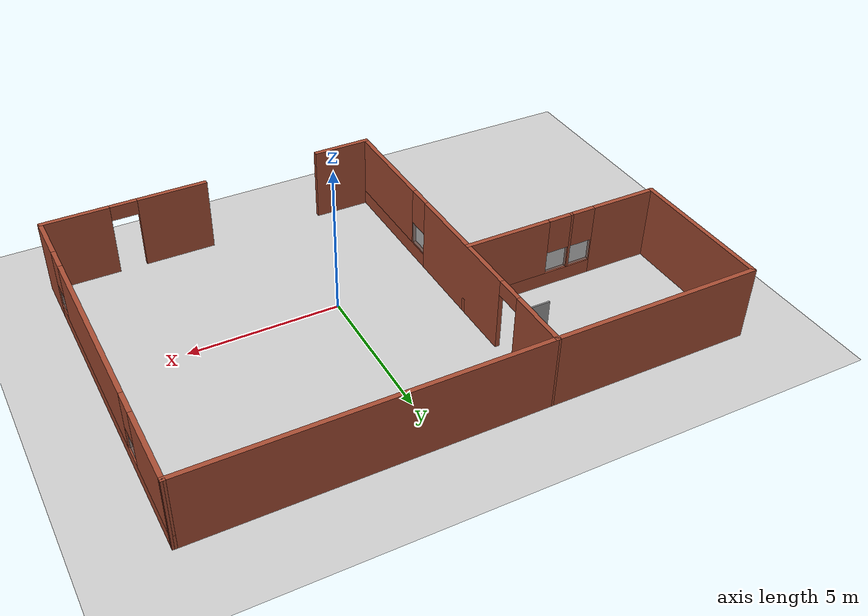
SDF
<sdf version="1.7">
 <world name="default">
  <model name="ground_plane">
   <static>1</static>
   <link name="link">
    <collision name="collision">
     <geometry><plane><normal>0 0 1</normal><size>100 100</size></plane></geometry>
     <surface><friction><ode><mu>100</mu><mu2>50</mu2></ode></friction></surface>
    </collision>
    <visual name="visual">
     <cast_shadows>0</cast_shadows>
     <geometry><plane><normal>0 0 1</normal><size>100 100</size></plane></geometry>
     <material>
      <script><uri>file://media/materials/scripts/gazebo.material</uri><name>Gazebo/Grey</name></script>
     </material>
    </visual>
   </link>
  </model>
  <light name="sun" type="directional">
   <pose>0 0 10 0 -0 0</pose>
   <diffuse>0.8 0.8 0.8 1</diffuse>
   <specular>0.2 0.2 0.2 1</specular>
   <attenuation>
    <range>1000</range>
    <constant>0.9</constant>
    <linear>0.01</linear>
    <quadratic>0.001</quadratic>
   </attenuation>
   <direction>-0.5 0.1 -0.9</direction>
   <spot><inner_angle>0</inner_angle><outer_angle>0</outer_angle><falloff>0</falloff></spot>
  </light>
  <scene><shadows>0</shadows><ambient>0.4 0.4 0.4 1</ambient><background>0.7 0.7 0.7 1</background></scene>
  <physics type="ode">
   <real_time_update_rate>1000</real_time_update_rate>
   <max_step_size>0.001</max_step_size>
   <real_time_factor>1</real_time_factor>
   <ode>
    <solver>
     <type>quick</type>
     <iters>150</iters>
     <precon_iters>0</precon_iters>
     <sor>1.4</sor>
     <use_dynamic_moi_rescaling>1</use_dynamic_moi_rescaling>
    </solver>
    <constraints>
     <cfm>1e-05</cfm>
     <erp>0.2</erp>
     <contact_max_correcting_vel>2000</contact_max_correcting_vel>
     <contact_surface_layer>0.01</contact_surface_layer>
    </constraints>
   </ode>
  </physics>
  <gravity>0 0 -9.8</gravity>
  <magnetic_field>6e-06 2.3e-05 -4.2e-05</magnetic_field>
  <atmosphere type="adiabatic"/>
  <audio><device>default</device></audio>
  <spherical_coordinates>
   <surface_model>EARTH_WGS84</surface_model>
   <latitude_deg>0</latitude_deg>
   <longitude_deg>0</longitude_deg>
   <elevation>0</elevation>
   <heading_deg>0</heading_deg>
  </spherical_coordinates>
  <model name="Garaje">
   <link name="Wall_32">
    <pose>9.04804 0.01998 0 0 -0 1.5708</pose>
    <visual name="Wall_32_Visual_0">
     <pose>-5.17883 0 1.25 0 -0 0</pose>
     <geometry><box><size>1.64234 0.15 2.5</size></box></geometry>
     <material>
      <script><uri>file://media/materials/scripts/gazebo.material</uri><name>Gazebo/Bricks</name></script>
      <ambient>1 1 1 1</ambient>
      <shader type="pixel"/>
     </material>
     <meta><layer>0</layer></meta>
    </visual>
    <visual name="Wall_32_Visual_1">
     <pose>0.821169 0 0.25 0 -0 0</pose>
     <geometry><box><size>10.3577 0.15 0.5</size></box></geometry>
     <material>
      <script><uri>file://media/materials/scripts/gazebo.material</uri><name>Gazebo/Bricks</name></script>
      <ambient>1 1 1 1</ambient>
      <shader type="pixel"/>
     </material>
     <meta><layer>0</layer></meta>
    </visual>
    <visual name="Wall_32_Visual_2">
     <pose>-0.498127 0 1.5 0 -0 0</pose>
     <geometry><box><size>6.11907 0.15 2</size></box></geometry>
     <material>
      <script><uri>file://media/materials/scripts/gazebo.material</uri><name>Gazebo/Bricks</name></script>
      <ambient>1 1 1 1</ambient>
      <shader type="pixel"/>
     </material>
     <meta><layer>0</layer></meta>
    </visual>
    <visual name="Wall_32_Visual_3">
     <pose>4.6807 0 1.5 0 -0 0</pose>
     <geometry><box><size>2.63859 0.15 2</size></box></geometry>
     <material>
      <script><uri>file://media/materials/scripts/gazebo.material</uri><name>Gazebo/Bricks</name></script>
      <ambient>1 1 1 1</ambient>
      <shader type="pixel"/>
     </material>
     <meta><layer>0</layer></meta>
    </visual>
    <visual name="Wall_32_Visual_4">
     <pose>-3.95766 0 1.9 0 -0 0</pose>
     <geometry><box><size>0.8 0.15 1.2</size></box></geometry>
     <material>
      <script><uri>file://media/materials/scripts/gazebo.material</uri><name>Gazebo/Bricks</name></script>
      <ambient>1 1 1 1</ambient>
      <shader type="pixel"/>
     </material>
     <meta><layer>0</layer></meta>
    </visual>
    <visual name="Wall_32_Visual_5">
     <pose>2.96141 0 1.9 0 -0 0</pose>
     <geometry><box><size>0.8 0.15 1.2</size></box></geometry>
     <material>
      <script><uri>file://media/materials/scripts/gazebo.material</uri><name>Gazebo/Bricks</name></script>
      <ambient>1 1 1 1</ambient>
      <shader type="pixel"/>
     </material>
     <meta><layer>0</layer></meta>
    </visual>
    <collision name="Wall_32_Collision_0">
     <pose>-5.17883 0 1.25 0 -0 0</pose>
     <geometry><box><size>1.64234 0.15 2.5</size></box></geometry>
     <surface>
      <friction>
       <ode><mu>1</mu><mu2>1</mu2><fdir1>0 0 0</fdir1><slip1>0</slip1><slip2>0</slip2></ode>
       <torsional>
        <coefficient>1</coefficient>
        <patch_radius>0</patch_radius>
        <surface_radius>0</surface_radius>
        <use_patch_radius>1</use_patch_radius>
        <ode><slip>0</slip></ode>
       </torsional>
      </friction>
      <bounce><restitution_coefficient>0</restitution_coefficient><threshold>1e+06</threshold></bounce>
      <contact>
       <collide_without_contact>0</collide_without_contact>
       <collide_without_contact_bitmask>1</collide_without_contact_bitmask>
       <collide_bitmask>1</collide_bitmask>
       <ode>
        <soft_cfm>0</soft_cfm>
        <soft_erp>0.2</soft_erp>
        <kp>1e+13</kp>
        <kd>1</kd>
        <max_vel>0.01</max_vel>
        <min_depth>0</min_depth>
       </ode>
       <bullet>
        <split_impulse>1</split_impulse>
        <split_impulse_penetration_threshold>-0.01</split_impulse_penetration_threshold>
        <soft_cfm>0</soft_cfm>
        <soft_erp>0.2</soft_erp>
        <kp>1e+13</kp>
        <kd>1</kd>
       </bullet>
      </contact>
     </surface>
    </collision>
    <collision name="Wall_32_Collision_1">
     <pose>0.821169 0 0.25 0 -0 0</pose>
     <geometry><box><size>10.3577 0.15 0.5</size></box></geometry>
     <surface>
      <friction>
       <ode><mu>1</mu><mu2>1</mu2><fdir1>0 0 0</fdir1><slip1>0</slip1><slip2>0</slip2></ode>
       <torsional>
        <coefficient>1</coefficient>
        <patch_radius>0</patch_radius>
        <surface_radius>0</surface_radius>
        <use_patch_radius>1</use_patch_radius>
        <ode><slip>0</slip></ode>
       </torsional>
      </friction>
      <bounce><restitution_coefficient>0</restitution_coefficient><threshold>1e+06</threshold></bounce>
      <contact>
       <collide_without_contact>0</collide_without_contact>
       <collide_without_contact_bitmask>1</collide_without_contact_bitmask>
       <collide_bitmask>1</collide_bitmask>
       <ode>
        <soft_cfm>0</soft_cfm>
        <soft_erp>0.2</soft_erp>
        <kp>1e+13</kp>
        <kd>1</kd>
        <max_vel>0.01</max_vel>
        <min_depth>0</min_depth>
       </ode>
       <bullet>
        <split_impulse>1</split_impulse>
        <split_impulse_penetration_threshold>-0.01</split_impulse_penetration_threshold>
        <soft_cfm>0</soft_cfm>
        <soft_erp>0.2</soft_erp>
        <kp>1e+13</kp>
        <kd>1</kd>
       </bullet>
      </contact>
     </surface>
    </collision>
    <collision name="Wall_32_Collision_2">
     <pose>-0.498127 0 1.5 0 -0 0</pose>
     <geometry><box><size>6.11907 0.15 2</size></box></geometry>
     <surface>
      <friction>
       <ode><mu>1</mu><mu2>1</mu2><fdir1>0 0 0</fdir1><slip1>0</slip1><slip2>0</slip2></ode>
       <torsional>
        <coefficient>1</coefficient>
        <patch_radius>0</patch_radius>
        <surface_radius>0</surface_radius>
        <use_patch_radius>1</use_patch_radius>
        <ode><slip>0</slip></ode>
       </torsional>
      </friction>
      <bounce><restitution_coefficient>0</restitution_coefficient><threshold>1e+06</threshold></bounce>
      <contact>
       <collide_without_contact>0</collide_without_contact>
       <collide_without_contact_bitmask>1</collide_without_contact_bitmask>
       <collide_bitmask>1</collide_bitmask>
       <ode>
        <soft_cfm>0</soft_cfm>
        <soft_erp>0.2</soft_erp>
        <kp>1e+13</kp>
        <kd>1</kd>
        <max_vel>0.01</max_vel>
        <min_depth>0</min_depth>
       </ode>
       <bullet>
        <split_impulse>1</split_impulse>
        <split_impulse_penetration_threshold>-0.01</split_impulse_penetration_threshold>
        <soft_cfm>0</soft_cfm>
        <soft_erp>0.2</soft_erp>
        <kp>1e+13</kp>
        <kd>1</kd>
       </bullet>
      </contact>
     </surface>
    </collision>
    <collision name="Wall_32_Collision_3">
     <pose>4.6807 0 1.5 0 -0 0</pose>
     <geometry><box><size>2.63859 0.15 2</size></box></geometry>
     <surface>
      <friction>
       <ode><mu>1</mu><mu2>1</mu2><fdir1>0 0 0</fdir1><slip1>0</slip1><slip2>0</slip2></ode>
       <torsional>
        <coefficient>1</coefficient>
        <patch_radius>0</patch_radius>
        <surface_radius>0</surface_radius>
        <use_patch_radius>1</use_patch_radius>
        <ode><slip>0</slip></ode>
       </torsional>
      </friction>
      <bounce><restitution_coefficient>0</restitution_coefficient><threshold>1e+06</threshold></bounce>
      <contact>
       <collide_without_contact>0</collide_without_contact>
       <collide_without_contact_bitmask>1</collide_without_contact_bitmask>
       <collide_bitmask>1</collide_bitmask>
       <ode>
        <soft_cfm>0</soft_cfm>
        <soft_erp>0.2</soft_erp>
        <kp>1e+13</kp>
        <kd>1</kd>
        <max_vel>0.01</max_vel>
        <min_depth>0</min_depth>
       </ode>
       <bullet>
        <split_impulse>1</split_impulse>
        <split_impulse_penetration_threshold>-0.01</split_impulse_penetration_threshold>
        <soft_cfm>0</soft_cfm>
        <soft_erp>0.2</soft_erp>
        <kp>1e+13</kp>
        <kd>1</kd>
       </bullet>
      </contact>
     </surface>
    </collision>
    <collision name="Wall_32_Collision_4">
     <pose>-3.95766 0 1.9 0 -0 0</pose>
     <geometry><box><size>0.8 0.15 1.2</size></box></geometry>
     <surface>
      <friction>
       <ode><mu>1</mu><mu2>1</mu2><fdir1>0 0 0</fdir1><slip1>0</slip1><slip2>0</slip2></ode>
       <torsional>
        <coefficient>1</coefficient>
        <patch_radius>0</patch_radius>
        <surface_radius>0</surface_radius>
        <use_patch_radius>1</use_patch_radius>
        <ode><slip>0</slip></ode>
       </torsional>
      </friction>
      <bounce><restitution_coefficient>0</restitution_coefficient><threshold>1e+06</threshold></bounce>
      <contact>
       <collide_without_contact>0</collide_without_contact>
       <collide_without_contact_bitmask>1</collide_without_contact_bitmask>
       <collide_bitmask>1</collide_bitmask>
       <ode>
        <soft_cfm>0</soft_cfm>
        <soft_erp>0.2</soft_erp>
        <kp>1e+13</kp>
        <kd>1</kd>
        <max_vel>0.01</max_vel>
        <min_depth>0</min_depth>
       </ode>
       <bullet>
        <split_impulse>1</split_impulse>
        <split_impulse_penetration_threshold>-0.01</split_impulse_penetration_threshold>
        <soft_cfm>0</soft_cfm>
        <soft_erp>0.2</soft_erp>
        <kp>1e+13</kp>
        <kd>1</kd>
       </bullet>
      </contact>
     </surface>
    </collision>
    <collision name="Wall_32_Collision_5">
     <pose>2.96141 0 1.9 0 -0 0</pose>
     <geometry><box><size>0.8 0.15 1.2</size></box></geometry>
     <surface>
      <friction>
       <ode><mu>1</mu><mu2>1</mu2><fdir1>0 0 0</fdir1><slip1>0</slip1><slip2>0</slip2></ode>
       <torsional>
        <coefficient>1</coefficient>
        <patch_radius>0</patch_radius>
        <surface_radius>0</surface_radius>
        <use_patch_radius>1</use_patch_radius>
        <ode><slip>0</slip></ode>
       </torsional>
      </friction>
      <bounce><restitution_coefficient>0</restitution_coefficient><threshold>1e+06</threshold></bounce>
      <contact>
       <collide_without_contact>0</collide_without_contact>
       <collide_without_contact_bitmask>1</collide_without_contact_bitmask>
       <collide_bitmask>1</collide_bitmask>
       <ode>
        <soft_cfm>0</soft_cfm>
        <soft_erp>0.2</soft_erp>
        <kp>1e+13</kp>
        <kd>1</kd>
        <max_vel>0.01</max_vel>
        <min_depth>0</min_depth>
       </ode>
       <bullet>
        <split_impulse>1</split_impulse>
        <split_impulse_penetration_threshold>-0.01</split_impulse_penetration_threshold>
        <soft_cfm>0</soft_cfm>
        <soft_erp>0.2</soft_erp>
        <kp>1e+13</kp>
        <kd>1</kd>
       </bullet>
      </contact>
     </surface>
    </collision>
   </link>
   <link name="Wall_34">
    <pose>-2.19831 -0.020247 0 0 0 -1.5708</pose>
    <visual name="Wall_34_Visual_0">
     <pose>-4.969 0 1.25 0 -0 0</pose>
     <geometry><box><size>2.06199 0.15 2.5</size></box></geometry>
     <material>
      <script><uri>file://media/materials/scripts/gazebo.material</uri><name>Gazebo/Bricks</name></script>
      <ambient>1 1 1 1</ambient>
      <shader type="pixel"/>
      <emissive>0 0 0 1</emissive>
     </material>
     <meta><layer>0</layer></meta>
    </visual>
    <visual name="Wall_34_Visual_1">
     <pose>-0.747274 0 1.25 0 -0 0</pose>
     <geometry><box><size>4.58146 0.15 2.5</size></box></geometry>
     <material>
      <script><uri>file://media/materials/scripts/gazebo.material</uri><name>Gazebo/Bricks</name></script>
      <ambient>1 1 1 1</ambient>
      <shader type="pixel"/>
      <emissive>0 0 0 1</emissive>
     </material>
     <meta><layer>0</layer></meta>
    </visual>
    <visual name="Wall_34_Visual_2">
     <pose>3.77173 0 0.25 0 -0 0</pose>
     <geometry><box><size>4.45654 0.15 0.5</size></box></geometry>
     <material>
      <script><uri>file://media/materials/scripts/gazebo.material</uri><name>Gazebo/Bricks</name></script>
      <ambient>1 1 1 1</ambient>
      <shader type="pixel"/>
      <emissive>0 0 0 1</emissive>
     </material>
     <meta><layer>0</layer></meta>
    </visual>
    <visual name="Wall_34_Visual_3">
     <pose>4.17173 0 1.5 0 -0 0</pose>
     <geometry><box><size>3.65654 0.15 2</size></box></geometry>
     <material>
      <script><uri>file://media/materials/scripts/gazebo.material</uri><name>Gazebo/Bricks</name></script>
      <ambient>1 1 1 1</ambient>
      <shader type="pixel"/>
      <emissive>0 0 0 1</emissive>
     </material>
     <meta><layer>0</layer></meta>
    </visual>
    <visual name="Wall_34_Visual_4">
     <pose>1.94346 0 1.9 0 -0 0</pose>
     <geometry><box><size>0.8 0.15 1.2</size></box></geometry>
     <material>
      <script><uri>file://media/materials/scripts/gazebo.material</uri><name>Gazebo/Bricks</name></script>
      <ambient>1 1 1 1</ambient>
      <shader type="pixel"/>
      <emissive>0 0 0 1</emissive>
     </material>
     <meta><layer>0</layer></meta>
    </visual>
    <visual name="Wall_34_Visual_5">
     <pose>-3.48801 0 2.25 0 -0 0</pose>
     <geometry><box><size>0.9 0.15 0.5</size></box></geometry>
     <material>
      <script><uri>file://media/materials/scripts/gazebo.material</uri><name>Gazebo/Bricks</name></script>
      <ambient>1 1 1 1</ambient>
      <shader type="pixel"/>
      <emissive>0 0 0 1</emissive>
     </material>
     <meta><layer>0</layer></meta>
    </visual>
    <collision name="Wall_34_Collision_0">
     <pose>-4.969 0 1.25 0 -0 0</pose>
     <geometry><box><size>2.06199 0.15 2.5</size></box></geometry>
     <surface>
      <friction>
       <ode><mu>1</mu><mu2>1</mu2><fdir1>0 0 0</fdir1><slip1>0</slip1><slip2>0</slip2></ode>
       <torsional>
        <coefficient>1</coefficient>
        <patch_radius>0</patch_radius>
        <surface_radius>0</surface_radius>
        <use_patch_radius>1</use_patch_radius>
        <ode><slip>0</slip></ode>
       </torsional>
      </friction>
      <bounce><restitution_coefficient>0</restitution_coefficient><threshold>1e+06</threshold></bounce>
      <contact>
       <collide_without_contact>0</collide_without_contact>
       <collide_without_contact_bitmask>1</collide_without_contact_bitmask>
       <collide_bitmask>1</collide_bitmask>
       <ode>
        <soft_cfm>0</soft_cfm>
        <soft_erp>0.2</soft_erp>
        <kp>1e+13</kp>
        <kd>1</kd>
        <max_vel>0.01</max_vel>
        <min_depth>0</min_depth>
       </ode>
       <bullet>
        <split_impulse>1</split_impulse>
        <split_impulse_penetration_threshold>-0.01</split_impulse_penetration_threshold>
        <soft_cfm>0</soft_cfm>
        <soft_erp>0.2</soft_erp>
        <kp>1e+13</kp>
        <kd>1</kd>
       </bullet>
      </contact>
     </surface>
    </collision>
    <collision name="Wall_34_Collision_1">
     <pose>-0.747274 0 1.25 0 -0 0</pose>
     <geometry><box><size>4.58146 0.15 2.5</size></box></geometry>
     <surface>
      <friction>
       <ode><mu>1</mu><mu2>1</mu2><fdir1>0 0 0</fdir1><slip1>0</slip1><slip2>0</slip2></ode>
       <torsional>
        <coefficient>1</coefficient>
        <patch_radius>0</patch_radius>
        <surface_radius>0</surface_radius>
        <use_patch_radius>1</use_patch_radius>
        <ode><slip>0</slip></ode>
       </torsional>
      </friction>
      <bounce><restitution_coefficient>0</restitution_coefficient><threshold>1e+06</threshold></bounce>
      <contact>
       <collide_without_contact>0</collide_without_contact>
       <collide_without_contact_bitmask>1</collide_without_contact_bitmask>
       <collide_bitmask>1</collide_bitmask>
       <ode>
        <soft_cfm>0</soft_cfm>
        <soft_erp>0.2</soft_erp>
        <kp>1e+13</kp>
        <kd>1</kd>
        <max_vel>0.01</max_vel>
        <min_depth>0</min_depth>
       </ode>
       <bullet>
        <split_impulse>1</split_impulse>
        <split_impulse_penetration_threshold>-0.01</split_impulse_penetration_threshold>
        <soft_cfm>0</soft_cfm>
        <soft_erp>0.2</soft_erp>
        <kp>1e+13</kp>
        <kd>1</kd>
       </bullet>
      </contact>
     </surface>
    </collision>
    <collision name="Wall_34_Collision_2">
     <pose>3.77173 0 0.25 0 -0 0</pose>
     <geometry><box><size>4.45654 0.15 0.5</size></box></geometry>
     <surface>
      <friction>
       <ode><mu>1</mu><mu2>1</mu2><fdir1>0 0 0</fdir1><slip1>0</slip1><slip2>0</slip2></ode>
       <torsional>
        <coefficient>1</coefficient>
        <patch_radius>0</patch_radius>
        <surface_radius>0</surface_radius>
        <use_patch_radius>1</use_patch_radius>
        <ode><slip>0</slip></ode>
       </torsional>
      </friction>
      <bounce><restitution_coefficient>0</restitution_coefficient><threshold>1e+06</threshold></bounce>
      <contact>
       <collide_without_contact>0</collide_without_contact>
       <collide_without_contact_bitmask>1</collide_without_contact_bitmask>
       <collide_bitmask>1</collide_bitmask>
       <ode>
        <soft_cfm>0</soft_cfm>
        <soft_erp>0.2</soft_erp>
        <kp>1e+13</kp>
        <kd>1</kd>
        <max_vel>0.01</max_vel>
        <min_depth>0</min_depth>
       </ode>
       <bullet>
        <split_impulse>1</split_impulse>
        <split_impulse_penetration_threshold>-0.01</split_impulse_penetration_threshold>
        <soft_cfm>0</soft_cfm>
        <soft_erp>0.2</soft_erp>
        <kp>1e+13</kp>
        <kd>1</kd>
       </bullet>
      </contact>
     </surface>
    </collision>
    <collision name="Wall_34_Collision_3">
     <pose>4.17173 0 1.5 0 -0 0</pose>
     <geometry><box><size>3.65654 0.15 2</size></box></geometry>
     <surface>
      <friction>
       <ode><mu>1</mu><mu2>1</mu2><fdir1>0 0 0</fdir1><slip1>0</slip1><slip2>0</slip2></ode>
       <torsional>
        <coefficient>1</coefficient>
        <patch_radius>0</patch_radius>
        <surface_radius>0</surface_radius>
        <use_patch_radius>1</use_patch_radius>
        <ode><slip>0</slip></ode>
       </torsional>
      </friction>
      <bounce><restitution_coefficient>0</restitution_coefficient><threshold>1e+06</threshold></bounce>
      <contact>
       <collide_without_contact>0</collide_without_contact>
       <collide_without_contact_bitmask>1</collide_without_contact_bitmask>
       <collide_bitmask>1</collide_bitmask>
       <ode>
        <soft_cfm>0</soft_cfm>
        <soft_erp>0.2</soft_erp>
        <kp>1e+13</kp>
        <kd>1</kd>
        <max_vel>0.01</max_vel>
        <min_depth>0</min_depth>
       </ode>
       <bullet>
        <split_impulse>1</split_impulse>
        <split_impulse_penetration_threshold>-0.01</split_impulse_penetration_threshold>
        <soft_cfm>0</soft_cfm>
        <soft_erp>0.2</soft_erp>
        <kp>1e+13</kp>
        <kd>1</kd>
       </bullet>
      </contact>
     </surface>
    </collision>
    <collision name="Wall_34_Collision_4">
     <pose>1.94346 0 1.9 0 -0 0</pose>
     <geometry><box><size>0.8 0.15 1.2</size></box></geometry>
     <surface>
      <friction>
       <ode><mu>1</mu><mu2>1</mu2><fdir1>0 0 0</fdir1><slip1>0</slip1><slip2>0</slip2></ode>
       <torsional>
        <coefficient>1</coefficient>
        <patch_radius>0</patch_radius>
        <surface_radius>0</surface_radius>
        <use_patch_radius>1</use_patch_radius>
        <ode><slip>0</slip></ode>
       </torsional>
      </friction>
      <bounce><restitution_coefficient>0</restitution_coefficient><threshold>1e+06</threshold></bounce>
      <contact>
       <collide_without_contact>0</collide_without_contact>
       <collide_without_contact_bitmask>1</collide_without_contact_bitmask>
       <collide_bitmask>1</collide_bitmask>
       <ode>
        <soft_cfm>0</soft_cfm>
        <soft_erp>0.2</soft_erp>
        <kp>1e+13</kp>
        <kd>1</kd>
        <max_vel>0.01</max_vel>
        <min_depth>0</min_depth>
       </ode>
       <bullet>
        <split_impulse>1</split_impulse>
        <split_impulse_penetration_threshold>-0.01</split_impulse_penetration_threshold>
        <soft_cfm>0</soft_cfm>
        <soft_erp>0.2</soft_erp>
        <kp>1e+13</kp>
        <kd>1</kd>
       </bullet>
      </contact>
     </surface>
    </collision>
    <collision name="Wall_34_Collision_5">
     <pose>-3.48801 0 2.25 0 -0 0</pose>
     <geometry><box><size>0.9 0.15 0.5</size></box></geometry>
     <surface>
      <friction>
       <ode><mu>1</mu><mu2>1</mu2><fdir1>0 0 0</fdir1><slip1>0</slip1><slip2>0</slip2></ode>
       <torsional>
        <coefficient>1</coefficient>
        <patch_radius>0</patch_radius>
        <surface_radius>0</surface_radius>
        <use_patch_radius>1</use_patch_radius>
        <ode><slip>0</slip></ode>
       </torsional>
      </friction>
      <bounce><restitution_coefficient>0</restitution_coefficient><threshold>1e+06</threshold></bounce>
      <contact>
       <collide_without_contact>0</collide_without_contact>
       <collide_without_contact_bitmask>1</collide_without_contact_bitmask>
       <collide_bitmask>1</collide_bitmask>
       <ode>
        <soft_cfm>0</soft_cfm>
        <soft_erp>0.2</soft_erp>
        <kp>1e+13</kp>
        <kd>1</kd>
        <max_vel>0.01</max_vel>
        <min_depth>0</min_depth>
       </ode>
       <bullet>
        <split_impulse>1</split_impulse>
        <split_impulse_penetration_threshold>-0.01</split_impulse_penetration_threshold>
        <soft_cfm>0</soft_cfm>
        <soft_erp>0.2</soft_erp>
        <kp>1e+13</kp>
        <kd>1</kd>
       </bullet>
      </contact>
     </surface>
    </collision>
   </link>
   <link name="Wall_42">
    <pose>3.42487 5.92487 0 0 -0 0.003577</pose>
    <visual name="Wall_42_Visual">
     <pose>0 0 1.25 0 -0 0</pose>
     <geometry><box><size>11.3964 0.15 2.5</size></box></geometry>
     <material>
      <script><uri>file://media/materials/scripts/gazebo.material</uri><name>Gazebo/Bricks</name></script>
      <ambient>1 1 1 1</ambient>
      <shader type="pixel"/>
     </material>
     <meta><layer>0</layer></meta>
    </visual>
    <collision name="Wall_42_Collision">
     <pose>0 0 1.25 0 -0 0</pose>
     <geometry><box><size>11.3964 0.15 2.5</size></box></geometry>
     <surface>
      <friction>
       <ode><mu>1</mu><mu2>1</mu2><fdir1>0 0 0</fdir1><slip1>0</slip1><slip2>0</slip2></ode>
       <torsional>
        <coefficient>1</coefficient>
        <patch_radius>0</patch_radius>
        <surface_radius>0</surface_radius>
        <use_patch_radius>1</use_patch_radius>
        <ode><slip>0</slip></ode>
       </torsional>
      </friction>
      <bounce><restitution_coefficient>0</restitution_coefficient><threshold>1e+06</threshold></bounce>
      <contact>
       <collide_without_contact>0</collide_without_contact>
       <collide_without_contact_bitmask>1</collide_without_contact_bitmask>
       <collide_bitmask>1</collide_bitmask>
       <ode>
        <soft_cfm>0</soft_cfm>
        <soft_erp>0.2</soft_erp>
        <kp>1e+13</kp>
        <kd>1</kd>
        <max_vel>0.01</max_vel>
        <min_depth>0</min_depth>
       </ode>
       <bullet>
        <split_impulse>1</split_impulse>
        <split_impulse_penetration_threshold>-0.01</split_impulse_penetration_threshold>
        <soft_cfm>0</soft_cfm>
        <soft_erp>0.2</soft_erp>
        <kp>1e+13</kp>
        <kd>1</kd>
       </bullet>
      </contact>
     </surface>
    </collision>
   </link>
   <link name="Wall_44">
    <pose>-5.62331 5.90475 0 0 -0 3.14159</pose>
    <visual name="Wall_44_Visual">
     <pose>0 0 1.25 0 -0 0</pose>
     <geometry><box><size>7 0.15 2.5</size></box></geometry>
     <material>
      <script><uri>file://media/materials/scripts/gazebo.material</uri><name>Gazebo/Bricks</name></script>
      <ambient>1 1 1 1</ambient>
      <shader type="pixel"/>
      <emissive>0 0 0 1</emissive>
     </material>
     <meta><layer>0</layer></meta>
    </visual>
    <collision name="Wall_44_Collision">
     <pose>0 0 1.25 0 -0 0</pose>
     <geometry><box><size>7 0.15 2.5</size></box></geometry>
     <surface>
      <friction>
       <ode><mu>1</mu><mu2>1</mu2><fdir1>0 0 0</fdir1><slip1>0</slip1><slip2>0</slip2></ode>
       <torsional>
        <coefficient>1</coefficient>
        <patch_radius>0</patch_radius>
        <surface_radius>0</surface_radius>
        <use_patch_radius>1</use_patch_radius>
        <ode><slip>0</slip></ode>
       </torsional>
      </friction>
      <bounce><restitution_coefficient>0</restitution_coefficient><threshold>1e+06</threshold></bounce>
      <contact>
       <collide_without_contact>0</collide_without_contact>
       <collide_without_contact_bitmask>1</collide_without_contact_bitmask>
       <collide_bitmask>1</collide_bitmask>
       <ode>
        <soft_cfm>0</soft_cfm>
        <soft_erp>0.2</soft_erp>
        <kp>1e+13</kp>
        <kd>1</kd>
        <max_vel>0.01</max_vel>
        <min_depth>0</min_depth>
       </ode>
       <bullet>
        <split_impulse>1</split_impulse>
        <split_impulse_penetration_threshold>-0.01</split_impulse_penetration_threshold>
        <soft_cfm>0</soft_cfm>
        <soft_erp>0.2</soft_erp>
        <kp>1e+13</kp>
        <kd>1</kd>
       </bullet>
      </contact>
     </surface>
    </collision>
   </link>
   <link name="Wall_45">
    <pose>-9.04831 3.47975 0 0 0 -1.5708</pose>
    <visual name="Wall_45_Visual">
     <pose>0 0 1.25 0 -0 0</pose>
     <geometry><box><size>5 0.15 2.5</size></box></geometry>
     <material>
      <script><uri>file://media/materials/scripts/gazebo.material</uri><name>Gazebo/Bricks</name></script>
      <ambient>1 1 1 1</ambient>
      <shader type="pixel"/>
     </material>
     <meta><layer>0</layer></meta>
    </visual>
    <collision name="Wall_45_Collision">
     <pose>0 0 1.25 0 -0 0</pose>
     <geometry><box><size>5 0.15 2.5</size></box></geometry>
     <surface>
      <friction>
       <ode><mu>1</mu><mu2>1</mu2><fdir1>0 0 0</fdir1><slip1>0</slip1><slip2>0</slip2></ode>
       <torsional>
        <coefficient>1</coefficient>
        <patch_radius>0</patch_radius>
        <surface_radius>0</surface_radius>
        <use_patch_radius>1</use_patch_radius>
        <ode><slip>0</slip></ode>
       </torsional>
      </friction>
      <bounce><restitution_coefficient>0</restitution_coefficient><threshold>1e+06</threshold></bounce>
      <contact>
       <collide_without_contact>0</collide_without_contact>
       <collide_without_contact_bitmask>1</collide_without_contact_bitmask>
       <collide_bitmask>1</collide_bitmask>
       <ode>
        <soft_cfm>0</soft_cfm>
        <soft_erp>0.2</soft_erp>
        <kp>1e+13</kp>
        <kd>1</kd>
        <max_vel>0.01</max_vel>
        <min_depth>0</min_depth>
       </ode>
       <bullet>
        <split_impulse>1</split_impulse>
        <split_impulse_penetration_threshold>-0.01</split_impulse_penetration_threshold>
        <soft_cfm>0</soft_cfm>
        <soft_erp>0.2</soft_erp>
        <kp>1e+13</kp>
        <kd>1</kd>
       </bullet>
      </contact>
     </surface>
    </collision>
   </link>
   <link name="Wall_46">
    <pose>-5.62331 1.05475 0 0 -0 0</pose>
    <visual name="Wall_46_Visual_0">
     <pose>-2.33308 0 1.25 0 -0 0</pose>
     <geometry><box><size>2.33383 0.15 2.5</size></box></geometry>
     <material>
      <script><uri>file://media/materials/scripts/gazebo.material</uri><name>Gazebo/Bricks</name></script>
      <ambient>1 1 1 1</ambient>
      <shader type="pixel"/>
      <emissive>0 0 0 1</emissive>
     </material>
     <meta><layer>0</layer></meta>
    </visual>
    <visual name="Wall_46_Visual_1">
     <pose>1.16692 0 0.25 0 -0 0</pose>
     <geometry><box><size>4.66617 0.15 0.5</size></box></geometry>
     <material>
      <script><uri>file://media/materials/scripts/gazebo.material</uri><name>Gazebo/Bricks</name></script>
      <ambient>1 1 1 1</ambient>
      <shader type="pixel"/>
      <emissive>0 0 0 1</emissive>
     </material>
     <meta><layer>0</layer></meta>
    </visual>
    <visual name="Wall_46_Visual_2">
     <pose>-0.325114 0 1.5 0 -0 0</pose>
     <geometry><box><size>0.082108 0.15 2</size></box></geometry>
     <material>
      <script><uri>file://media/materials/scripts/gazebo.material</uri><name>Gazebo/Bricks</name></script>
      <ambient>1 1 1 1</ambient>
      <shader type="pixel"/>
      <emissive>0 0 0 1</emissive>
     </material>
     <meta><layer>0</layer></meta>
    </visual>
    <visual name="Wall_46_Visual_3">
     <pose>2.00797 0 1.5 0 -0 0</pose>
     <geometry><box><size>2.98406 0.15 2</size></box></geometry>
     <material>
      <script><uri>file://media/materials/scripts/gazebo.material</uri><name>Gazebo/Bricks</name></script>
      <ambient>1 1 1 1</ambient>
      <shader type="pixel"/>
      <emissive>0 0 0 1</emissive>
     </material>
     <meta><layer>0</layer></meta>
    </visual>
    <visual name="Wall_46_Visual_4">
     <pose>-0.766168 0 1.9 0 -0 0</pose>
     <geometry><box><size>0.8 0.15 1.2</size></box></geometry>
     <material>
      <script><uri>file://media/materials/scripts/gazebo.material</uri><name>Gazebo/Bricks</name></script>
      <ambient>1 1 1 1</ambient>
      <shader type="pixel"/>
      <emissive>0 0 0 1</emissive>
     </material>
     <meta><layer>0</layer></meta>
    </visual>
    <visual name="Wall_46_Visual_5">
     <pose>0.11594 0 1.9 0 -0 0</pose>
     <geometry><box><size>0.8 0.15 1.2</size></box></geometry>
     <material>
      <script><uri>file://media/materials/scripts/gazebo.material</uri><name>Gazebo/Bricks</name></script>
      <ambient>1 1 1 1</ambient>
      <shader type="pixel"/>
      <emissive>0 0 0 1</emissive>
     </material>
     <meta><layer>0</layer></meta>
    </visual>
    <collision name="Wall_46_Collision_0">
     <pose>-2.33308 0 1.25 0 -0 0</pose>
     <geometry><box><size>2.33383 0.15 2.5</size></box></geometry>
     <surface>
      <friction>
       <ode><mu>1</mu><mu2>1</mu2><fdir1>0 0 0</fdir1><slip1>0</slip1><slip2>0</slip2></ode>
       <torsional>
        <coefficient>1</coefficient>
        <patch_radius>0</patch_radius>
        <surface_radius>0</surface_radius>
        <use_patch_radius>1</use_patch_radius>
        <ode><slip>0</slip></ode>
       </torsional>
      </friction>
      <bounce><restitution_coefficient>0</restitution_coefficient><threshold>1e+06</threshold></bounce>
      <contact>
       <collide_without_contact>0</collide_without_contact>
       <collide_without_contact_bitmask>1</collide_without_contact_bitmask>
       <collide_bitmask>1</collide_bitmask>
       <ode>
        <soft_cfm>0</soft_cfm>
        <soft_erp>0.2</soft_erp>
        <kp>1e+13</kp>
        <kd>1</kd>
        <max_vel>0.01</max_vel>
        <min_depth>0</min_depth>
       </ode>
       <bullet>
        <split_impulse>1</split_impulse>
        <split_impulse_penetration_threshold>-0.01</split_impulse_penetration_threshold>
        <soft_cfm>0</soft_cfm>
        <soft_erp>0.2</soft_erp>
        <kp>1e+13</kp>
        <kd>1</kd>
       </bullet>
      </contact>
     </surface>
    </collision>
    <collision name="Wall_46_Collision_1">
     <pose>1.16692 0 0.25 0 -0 0</pose>
     <geometry><box><size>4.66617 0.15 0.5</size></box></geometry>
     <surface>
      <friction>
       <ode><mu>1</mu><mu2>1</mu2><fdir1>0 0 0</fdir1><slip1>0</slip1><slip2>0</slip2></ode>
       <torsional>
        <coefficient>1</coefficient>
        <patch_radius>0</patch_radius>
        <surface_radius>0</surface_radius>
        <use_patch_radius>1</use_patch_radius>
        <ode><slip>0</slip></ode>
       </torsional>
      </friction>
      <bounce><restitution_coefficient>0</restitution_coefficient><threshold>1e+06</threshold></bounce>
      <contact>
       <collide_without_contact>0</collide_without_contact>
       <collide_without_contact_bitmask>1</collide_without_contact_bitmask>
       <collide_bitmask>1</collide_bitmask>
       <ode>
        <soft_cfm>0</soft_cfm>
        <soft_erp>0.2</soft_erp>
        <kp>1e+13</kp>
        <kd>1</kd>
        <max_vel>0.01</max_vel>
        <min_depth>0</min_depth>
       </ode>
       <bullet>
        <split_impulse>1</split_impulse>
        <split_impulse_penetration_threshold>-0.01</split_impulse_penetration_threshold>
        <soft_cfm>0</soft_cfm>
        <soft_erp>0.2</soft_erp>
        <kp>1e+13</kp>
        <kd>1</kd>
       </bullet>
      </contact>
     </surface>
    </collision>
    <collision name="Wall_46_Collision_2">
     <pose>-0.325114 0 1.5 0 -0 0</pose>
     <geometry><box><size>0.082108 0.15 2</size></box></geometry>
     <surface>
      <friction>
       <ode><mu>1</mu><mu2>1</mu2><fdir1>0 0 0</fdir1><slip1>0</slip1><slip2>0</slip2></ode>
       <torsional>
        <coefficient>1</coefficient>
        <patch_radius>0</patch_radius>
        <surface_radius>0</surface_radius>
        <use_patch_radius>1</use_patch_radius>
        <ode><slip>0</slip></ode>
       </torsional>
      </friction>
      <bounce><restitution_coefficient>0</restitution_coefficient><threshold>1e+06</threshold></bounce>
      <contact>
       <collide_without_contact>0</collide_without_contact>
       <collide_without_contact_bitmask>1</collide_without_contact_bitmask>
       <collide_bitmask>1</collide_bitmask>
       <ode>
        <soft_cfm>0</soft_cfm>
        <soft_erp>0.2</soft_erp>
        <kp>1e+13</kp>
        <kd>1</kd>
        <max_vel>0.01</max_vel>
        <min_depth>0</min_depth>
       </ode>
       <bullet>
        <split_impulse>1</split_impulse>
        <split_impulse_penetration_threshold>-0.01</split_impulse_penetration_threshold>
        <soft_cfm>0</soft_cfm>
        <soft_erp>0.2</soft_erp>
        <kp>1e+13</kp>
        <kd>1</kd>
       </bullet>
      </contact>
     </surface>
    </collision>
    <collision name="Wall_46_Collision_3">
     <pose>2.00797 0 1.5 0 -0 0</pose>
     <geometry><box><size>2.98406 0.15 2</size></box></geometry>
     <surface>
      <friction>
       <ode><mu>1</mu><mu2>1</mu2><fdir1>0 0 0</fdir1><slip1>0</slip1><slip2>0</slip2></ode>
       <torsional>
        <coefficient>1</coefficient>
        <patch_radius>0</patch_radius>
        <surface_radius>0</surface_radius>
        <use_patch_radius>1</use_patch_radius>
        <ode><slip>0</slip></ode>
       </torsional>
      </friction>
      <bounce><restitution_coefficient>0</restitution_coefficient><threshold>1e+06</threshold></bounce>
      <contact>
       <collide_without_contact>0</collide_without_contact>
       <collide_without_contact_bitmask>1</collide_without_contact_bitmask>
       <collide_bitmask>1</collide_bitmask>
       <ode>
        <soft_cfm>0</soft_cfm>
        <soft_erp>0.2</soft_erp>
        <kp>1e+13</kp>
        <kd>1</kd>
        <max_vel>0.01</max_vel>
        <min_depth>0</min_depth>
       </ode>
       <bullet>
        <split_impulse>1</split_impulse>
        <split_impulse_penetration_threshold>-0.01</split_impulse_penetration_threshold>
        <soft_cfm>0</soft_cfm>
        <soft_erp>0.2</soft_erp>
        <kp>1e+13</kp>
        <kd>1</kd>
       </bullet>
      </contact>
     </surface>
    </collision>
    <collision name="Wall_46_Collision_4">
     <pose>-0.766168 0 1.9 0 -0 0</pose>
     <geometry><box><size>0.8 0.15 1.2</size></box></geometry>
     <surface>
      <friction>
       <ode><mu>1</mu><mu2>1</mu2><fdir1>0 0 0</fdir1><slip1>0</slip1><slip2>0</slip2></ode>
       <torsional>
        <coefficient>1</coefficient>
        <patch_radius>0</patch_radius>
        <surface_radius>0</surface_radius>
        <use_patch_radius>1</use_patch_radius>
        <ode><slip>0</slip></ode>
       </torsional>
      </friction>
      <bounce><restitution_coefficient>0</restitution_coefficient><threshold>1e+06</threshold></bounce>
      <contact>
       <collide_without_contact>0</collide_without_contact>
       <collide_without_contact_bitmask>1</collide_without_contact_bitmask>
       <collide_bitmask>1</collide_bitmask>
       <ode>
        <soft_cfm>0</soft_cfm>
        <soft_erp>0.2</soft_erp>
        <kp>1e+13</kp>
        <kd>1</kd>
        <max_vel>0.01</max_vel>
        <min_depth>0</min_depth>
       </ode>
       <bullet>
        <split_impulse>1</split_impulse>
        <split_impulse_penetration_threshold>-0.01</split_impulse_penetration_threshold>
        <soft_cfm>0</soft_cfm>
        <soft_erp>0.2</soft_erp>
        <kp>1e+13</kp>
        <kd>1</kd>
       </bullet>
      </contact>
     </surface>
    </collision>
    <collision name="Wall_46_Collision_5">
     <pose>0.11594 0 1.9 0 -0 0</pose>
     <geometry><box><size>0.8 0.15 1.2</size></box></geometry>
     <surface>
      <friction>
       <ode><mu>1</mu><mu2>1</mu2><fdir1>0 0 0</fdir1><slip1>0</slip1><slip2>0</slip2></ode>
       <torsional>
        <coefficient>1</coefficient>
        <patch_radius>0</patch_radius>
        <surface_radius>0</surface_radius>
        <use_patch_radius>1</use_patch_radius>
        <ode><slip>0</slip></ode>
       </torsional>
      </friction>
      <bounce><restitution_coefficient>0</restitution_coefficient><threshold>1e+06</threshold></bounce>
      <contact>
       <collide_without_contact>0</collide_without_contact>
       <collide_without_contact_bitmask>1</collide_without_contact_bitmask>
       <collide_bitmask>1</collide_bitmask>
       <ode>
        <soft_cfm>0</soft_cfm>
        <soft_erp>0.2</soft_erp>
        <kp>1e+13</kp>
        <kd>1</kd>
        <max_vel>0.01</max_vel>
        <min_depth>0</min_depth>
       </ode>
       <bullet>
        <split_impulse>1</split_impulse>
        <split_impulse_penetration_threshold>-0.01</split_impulse_penetration_threshold>
        <soft_cfm>0</soft_cfm>
        <soft_erp>0.2</soft_erp>
        <kp>1e+13</kp>
        <kd>1</kd>
       </bullet>
      </contact>
     </surface>
    </collision>
   </link>
   <link name="Wall_48">
    <pose>-1.27331 -5.94525 0 0 -0 0</pose>
    <visual name="Wall_48_Visual">
     <pose>0 0 1.25 0 -0 0</pose>
     <geometry><box><size>2 0.15 2.5</size></box></geometry>
     <material>
      <script><uri>file://media/materials/scripts/gazebo.material</uri><name>Gazebo/Bricks</name></script>
      <ambient>1 1 1 1</ambient>
      <shader type="pixel"/>
      <emissive>0 0 0 1</emissive>
     </material>
     <meta><layer>0</layer></meta>
    </visual>
    <collision name="Wall_48_Collision">
     <pose>0 0 1.25 0 -0 0</pose>
     <geometry><box><size>2 0.15 2.5</size></box></geometry>
     <surface>
      <friction>
       <ode><mu>1</mu><mu2>1</mu2><fdir1>0 0 0</fdir1><slip1>0</slip1><slip2>0</slip2></ode>
       <torsional>
        <coefficient>1</coefficient>
        <patch_radius>0</patch_radius>
        <surface_radius>0</surface_radius>
        <use_patch_radius>1</use_patch_radius>
        <ode><slip>0</slip></ode>
       </torsional>
      </friction>
      <bounce><restitution_coefficient>0</restitution_coefficient><threshold>1e+06</threshold></bounce>
      <contact>
       <collide_without_contact>0</collide_without_contact>
       <collide_without_contact_bitmask>1</collide_without_contact_bitmask>
       <collide_bitmask>1</collide_bitmask>
       <ode>
        <soft_cfm>0</soft_cfm>
        <soft_erp>0.2</soft_erp>
        <kp>1e+13</kp>
        <kd>1</kd>
        <max_vel>0.01</max_vel>
        <min_depth>0</min_depth>
       </ode>
       <bullet>
        <split_impulse>1</split_impulse>
        <split_impulse_penetration_threshold>-0.01</split_impulse_penetration_threshold>
        <soft_cfm>0</soft_cfm>
        <soft_erp>0.2</soft_erp>
        <kp>1e+13</kp>
        <kd>1</kd>
       </bullet>
      </contact>
     </surface>
    </collision>
   </link>
   <link name="Wall_50">
    <pose>6.3586 -5.93733 0 0 -0 3.14159</pose>
    <inertial>
     <mass>1</mass>
     <inertia><ixx>1</ixx><ixy>0</ixy><ixz>0</ixz><iyy>1</iyy><iyz>0</iyz><izz>1</izz></inertia>
    </inertial>
    <visual name="Wall_50_Visual_0">
     <pose>-1.6265 0 1.25 0 -0 0</pose>
     <geometry><box><size>2.247 0.15 2.5</size></box></geometry>
     <material>
      <script><uri>file://media/materials/scripts/gazebo.material</uri><name>Gazebo/Bricks</name></script>
      <ambient>1 1 1 1</ambient>
      <shader type="pixel"><normal_map>__default__</normal_map></shader>
      <emissive>0 0 0 1</emissive>
      <diffuse>1 1 1 1</diffuse>
      <specular>0.2 0.2 0.2 1</specular>
     </material>
     <meta><layer>0</layer></meta>
    </visual>
    <visual name="Wall_50_Visual_1">
     <pose>1.5735 0 1.25 0 -0 0</pose>
     <geometry><box><size>2.353 0.15 2.5</size></box></geometry>
     <material>
      <script><uri>file://media/materials/scripts/gazebo.material</uri><name>Gazebo/Bricks</name></script>
      <ambient>1 1 1 1</ambient>
      <shader type="pixel"><normal_map>__default__</normal_map></shader>
      <emissive>0 0 0 1</emissive>
      <diffuse>1 1 1 1</diffuse>
      <specular>0.2 0.2 0.2 1</specular>
     </material>
     <meta><layer>0</layer></meta>
    </visual>
    <visual name="Wall_50_Visual_2">
     <pose>-0.053 0 2.25 0 -0 0</pose>
     <geometry><box><size>0.9 0.15 0.5</size></box></geometry>
     <material>
      <script><uri>file://media/materials/scripts/gazebo.material</uri><name>Gazebo/Bricks</name></script>
      <ambient>1 1 1 1</ambient>
      <shader type="pixel"><normal_map>__default__</normal_map></shader>
      <emissive>0 0 0 1</emissive>
      <diffuse>1 1 1 1</diffuse>
      <specular>0.2 0.2 0.2 1</specular>
     </material>
     <meta><layer>0</layer></meta>
    </visual>
    <collision name="Wall_50_Collision_0">
     <pose>-1.6265 0 1.25 0 -0 0</pose>
     <geometry><box><size>2.247 0.15 2.5</size></box></geometry>
     <surface>
      <friction>
       <ode><mu>1</mu><mu2>1</mu2><fdir1>0 0 0</fdir1><slip1>0</slip1><slip2>0</slip2></ode>
       <torsional>
        <coefficient>1</coefficient>
        <patch_radius>0</patch_radius>
        <surface_radius>0</surface_radius>
        <use_patch_radius>1</use_patch_radius>
        <ode><slip>0</slip></ode>
       </torsional>
      </friction>
      <bounce><restitution_coefficient>0</restitution_coefficient><threshold>1e+06</threshold></bounce>
      <contact>
       <collide_without_contact>0</collide_without_contact>
       <collide_without_contact_bitmask>1</collide_without_contact_bitmask>
       <collide_bitmask>1</collide_bitmask>
       <ode>
        <soft_cfm>0</soft_cfm>
        <soft_erp>0.2</soft_erp>
        <kp>1e+13</kp>
        <kd>1</kd>
        <max_vel>0.01</max_vel>
        <min_depth>0</min_depth>
       </ode>
       <bullet>
        <split_impulse>1</split_impulse>
        <split_impulse_penetration_threshold>-0.01</split_impulse_penetration_threshold>
        <soft_cfm>0</soft_cfm>
        <soft_erp>0.2</soft_erp>
        <kp>1e+13</kp>
        <kd>1</kd>
       </bullet>
      </contact>
     </surface>
    </collision>
    <collision name="Wall_50_Collision_2">
     <pose>-0.053 0 2.25 0 -0 0</pose>
     <geometry><box><size>0.9 0.15 0.5</size></box></geometry>
     <surface>
      <friction>
       <ode><mu>1</mu><mu2>1</mu2><fdir1>0 0 0</fdir1><slip1>0</slip1><slip2>0</slip2></ode>
       <torsional>
        <coefficient>1</coefficient>
        <patch_radius>0</patch_radius>
        <surface_radius>0</surface_radius>
        <use_patch_radius>1</use_patch_radius>
        <ode><slip>0</slip></ode>
       </torsional>
      </friction>
      <bounce><restitution_coefficient>0</restitution_coefficient><threshold>1e+06</threshold></bounce>
      <contact>
       <collide_without_contact>0</collide_without_contact>
       <collide_without_contact_bitmask>1</collide_without_contact_bitmask>
       <collide_bitmask>1</collide_bitmask>
       <ode>
        <soft_cfm>0</soft_cfm>
        <soft_erp>0.2</soft_erp>
        <kp>1e+13</kp>
        <kd>1</kd>
        <max_vel>0.01</max_vel>
        <min_depth>0</min_depth>
       </ode>
       <bullet>
        <split_impulse>1</split_impulse>
        <split_impulse_penetration_threshold>-0.01</split_impulse_penetration_threshold>
        <soft_cfm>0</soft_cfm>
        <soft_erp>0.2</soft_erp>
        <kp>1e+13</kp>
        <kd>1</kd>
       </bullet>
      </contact>
     </surface>
    </collision>
    <collision name="Wall_50_Collision_1">
     <pose>1.5735 0 1.25 0 -0 0</pose>
     <geometry><box><size>2.353 0.15 2.5</size></box></geometry>
     <surface>
      <friction>
       <ode><mu>1</mu><mu2>1</mu2><fdir1>0 0 0</fdir1><slip1>0</slip1><slip2>0</slip2></ode>
       <torsional>
        <coefficient>1</coefficient>
        <patch_radius>0</patch_radius>
        <surface_radius>0</surface_radius>
        <use_patch_radius>1</use_patch_radius>
        <ode><slip>0</slip></ode>
       </torsional>
      </friction>
      <bounce><restitution_coefficient>0</restitution_coefficient><threshold>1e+06</threshold></bounce>
      <contact>
       <collide_without_contact>0</collide_without_contact>
       <collide_without_contact_bitmask>1</collide_without_contact_bitmask>
       <collide_bitmask>1</collide_bitmask>
       <ode>
        <soft_cfm>0</soft_cfm>
        <soft_erp>0.2</soft_erp>
        <kp>1e+13</kp>
        <kd>1</kd>
        <max_vel>0.01</max_vel>
        <min_depth>0</min_depth>
       </ode>
       <bullet>
        <split_impulse>1</split_impulse>
        <split_impulse_penetration_threshold>-0.01</split_impulse_penetration_threshold>
        <soft_cfm>0</soft_cfm>
        <soft_erp>0.2</soft_erp>
        <kp>1e+13</kp>
        <kd>1</kd>
       </bullet>
      </contact>
     </surface>
    </collision>
   </link>
   <static>1</static>
   <pose>-1.2977 0.909007 0 0 -0 0</pose>
  </model>
  <model name="WithDoor">
   <link name="link_0">
    <inertial>
     <mass>0.147874</mass>
     <inertia>
      <ixx>0.110575</ixx>
      <ixy>0</ixy>
      <ixz>0</ixz>
      <iyy>0.122868</iyy>
      <iyz>0</iyz>
      <izz>0.0123528</izz>
     </inertia>
    </inertial>
    <pose>-2e-06 3e-06 0 0 -0 0</pose>
    <visual name="visual">
     <geometry><box><size>1 0.049313 2.00751</size></box></geometry>
     <material>
      <lighting>1</lighting>
      <script><uri>file://media/materials/scripts/gazebo.material</uri><name>Gazebo/Grey</name></script>
      <shader type="pixel"/>
     </material>
    </visual>
    <collision name="collision">
     <geometry><box><size>1 0.049313 2.00751</size></box></geometry>
     <surface>
      <friction>
       <ode><mu>1</mu><mu2>1</mu2><fdir1>0 0 0</fdir1><slip1>0</slip1><slip2>0</slip2></ode>
       <torsional>
        <coefficient>1</coefficient>
        <patch_radius>0</patch_radius>
        <surface_radius>0</surface_radius>
        <use_patch_radius>1</use_patch_radius>
        <ode><slip>0</slip></ode>
       </torsional>
      </friction>
      <bounce><restitution_coefficient>0</restitution_coefficient><threshold>1e+06</threshold></bounce>
      <contact>
       <collide_without_contact>0</collide_without_contact>
       <collide_without_contact_bitmask>1</collide_without_contact_bitmask>
       <collide_bitmask>1</collide_bitmask>
       <ode>
        <soft_cfm>0</soft_cfm>
        <soft_erp>0.2</soft_erp>
        <kp>1e+13</kp>
        <kd>1</kd>
        <max_vel>0.01</max_vel>
        <min_depth>0</min_depth>
       </ode>
       <bullet>
        <split_impulse>1</split_impulse>
        <split_impulse_penetration_threshold>-0.01</split_impulse_penetration_threshold>
        <soft_cfm>0</soft_cfm>
        <soft_erp>0.2</soft_erp>
        <kp>1e+13</kp>
        <kd>1</kd>
       </bullet>
      </contact>
     </surface>
    </collision>
   </link>
   <static>0</static>
   <pose>-4.07125 4.84917 1.00375 -1e-06 0 -0.000264</pose>
  </model>
  <model name="Ventana3">
   <link name="link_2">
    <inertial>
     <mass>0.0681138</mass>
     <inertia>
      <ixx>0.013373</ixx>
      <ixy>0</ixy>
      <ixz>0</ixz>
      <iyy>0.00479783</iyy>
      <iyz>0</iyz>
      <izz>0.00861655</izz>
     </inertia>
    </inertial>
    <pose>-4.66486 -1.42913 0 0 -0 0</pose>
    <visual name="visual">
     <geometry><box><size>0.060349 1.2306 0.917398</size></box></geometry>
     <material>
      <lighting>1</lighting>
      <script><uri>file://media/materials/scripts/gazebo.material</uri><name>Gazebo/Grey</name></script>
      <shader type="pixel"><normal_map>__default__</normal_map></shader>
      <ambient>0.3 0.3 0.3 1</ambient>
      <diffuse>0.7 0.7 0.7 1</diffuse>
      <specular>0.01 0.01 0.01 1</specular>
      <emissive>0 0 0 1</emissive>
     </material>
     <transparency>0.3</transparency>
    </visual>
    <collision name="collision">
     <geometry><box><size>0.060349 1.2306 0.917398</size></box></geometry>
     <surface>
      <friction>
       <ode><mu>1</mu><mu2>1</mu2><fdir1>0 0 0</fdir1><slip1>0</slip1><slip2>0</slip2></ode>
       <torsional>
        <coefficient>1</coefficient>
        <patch_radius>0</patch_radius>
        <surface_radius>0</surface_radius>
        <use_patch_radius>1</use_patch_radius>
        <ode><slip>0</slip></ode>
       </torsional>
      </friction>
      <bounce><restitution_coefficient>0</restitution_coefficient><threshold>1e+06</threshold></bounce>
      <contact>
       <collide_without_contact>0</collide_without_contact>
       <collide_without_contact_bitmask>1</collide_without_contact_bitmask>
       <collide_bitmask>1</collide_bitmask>
       <ode>
        <soft_cfm>0</soft_cfm>
        <soft_erp>0.2</soft_erp>
        <kp>1e+13</kp>
        <kd>1</kd>
        <max_vel>0.01</max_vel>
        <min_depth>0</min_depth>
       </ode>
       <bullet>
        <split_impulse>1</split_impulse>
        <split_impulse_penetration_threshold>-0.01</split_impulse_penetration_threshold>
        <soft_cfm>0</soft_cfm>
        <soft_erp>0.2</soft_erp>
        <kp>1e+13</kp>
        <kd>1</kd>
       </bullet>
      </contact>
     </surface>
    </collision>
   </link>
   <link name="link_2_clone">
    <inertial>
     <mass>0.0681138</mass>
     <inertia>
      <ixx>0.013373</ixx>
      <ixy>0</ixy>
      <ixz>0</ixz>
      <iyy>0.00479783</iyy>
      <iyz>0</iyz>
      <izz>0.00861655</izz>
     </inertia>
    </inertial>
    <pose>6.56843 3.38849 0 0 -0 0</pose>
    <visual name="visual">
     <geometry><box><size>0.060349 1.2306 0.917398</size></box></geometry>
     <material>
      <lighting>1</lighting>
      <script><uri>file://media/materials/scripts/gazebo.material</uri><name>Gazebo/Grey</name></script>
      <shader type="pixel"><normal_map>__default__</normal_map></shader>
      <ambient>0.3 0.3 0.3 1</ambient>
      <diffuse>0.7 0.7 0.7 1</diffuse>
      <specular>0.01 0.01 0.01 1</specular>
      <emissive>0 0 0 1</emissive>
     </material>
     <transparency>0.3</transparency>
    </visual>
    <collision name="collision">
     <geometry><box><size>0.060349 1.2306 0.917398</size></box></geometry>
     <surface>
      <friction>
       <ode><mu>1</mu><mu2>1</mu2><fdir1>0 0 0</fdir1><slip1>0</slip1><slip2>0</slip2></ode>
       <torsional>
        <coefficient>1</coefficient>
        <patch_radius>0</patch_radius>
        <surface_radius>0</surface_radius>
        <use_patch_radius>1</use_patch_radius>
        <ode><slip>0</slip></ode>
       </torsional>
      </friction>
      <bounce><restitution_coefficient>0</restitution_coefficient><threshold>1e+06</threshold></bounce>
      <contact>
       <collide_without_contact>0</collide_without_contact>
       <collide_without_contact_bitmask>1</collide_without_contact_bitmask>
       <collide_bitmask>1</collide_bitmask>
       <ode>
        <soft_cfm>0</soft_cfm>
        <soft_erp>0.2</soft_erp>
        <kp>1e+13</kp>
        <kd>1</kd>
        <max_vel>0.01</max_vel>
        <min_depth>0</min_depth>
       </ode>
       <bullet>
        <split_impulse>1</split_impulse>
        <split_impulse_penetration_threshold>-0.01</split_impulse_penetration_threshold>
        <soft_cfm>0</soft_cfm>
        <soft_erp>0.2</soft_erp>
        <kp>1e+13</kp>
        <kd>1</kd>
       </bullet>
      </contact>
     </surface>
    </collision>
   </link>
   <link name="link_2_clone_0">
    <inertial>
     <mass>0.103847</mass>
     <inertia>
      <ixx>0.0377451</ixx>
      <ixy>0</ixy>
      <ixz>0</ixz>
      <iyy>0.00731479</iyy>
      <iyz>0</iyz>
      <izz>0.0304933</izz>
     </inertia>
    </inertial>
    <pose>-8.4805 1.49914 0 0 -0 1.56167</pose>
    <visual name="visual">
     <geometry><box><size>0.060349 1.87617 0.917398</size></box></geometry>
     <material>
      <lighting>1</lighting>
      <script><uri>file://media/materials/scripts/gazebo.material</uri><name>Gazebo/Grey</name></script>
      <shader type="pixel"><normal_map>__default__</normal_map></shader>
      <ambient>0.3 0.3 0.3 1</ambient>
      <diffuse>0.7 0.7 0.7 1</diffuse>
      <specular>0.01 0.01 0.01 1</specular>
      <emissive>0 0 0 1</emissive>
     </material>
     <transparency>0.3</transparency>
    </visual>
    <collision name="collision">
     <geometry><box><size>0.060349 1.87617 0.917398</size></box></geometry>
     <surface>
      <friction>
       <ode><mu>1</mu><mu2>1</mu2><fdir1>0 0 0</fdir1><slip1>0</slip1><slip2>0</slip2></ode>
       <torsional>
        <coefficient>1</coefficient>
        <patch_radius>0</patch_radius>
        <surface_radius>0</surface_radius>
        <use_patch_radius>1</use_patch_radius>
        <ode><slip>0</slip></ode>
       </torsional>
      </friction>
      <bounce><restitution_coefficient>0</restitution_coefficient><threshold>1e+06</threshold></bounce>
      <contact>
       <collide_without_contact>0</collide_without_contact>
       <collide_without_contact_bitmask>1</collide_without_contact_bitmask>
       <collide_bitmask>1</collide_bitmask>
       <ode>
        <soft_cfm>0</soft_cfm>
        <soft_erp>0.2</soft_erp>
        <kp>1e+13</kp>
        <kd>1</kd>
        <max_vel>0.01</max_vel>
        <min_depth>0</min_depth>
       </ode>
       <bullet>
        <split_impulse>1</split_impulse>
        <split_impulse_penetration_threshold>-0.01</split_impulse_penetration_threshold>
        <soft_cfm>0</soft_cfm>
        <soft_erp>0.2</soft_erp>
        <kp>1e+13</kp>
        <kd>1</kd>
       </bullet>
      </contact>
     </surface>
    </collision>
   </link>
   <link name="link_2_clone_clone">
    <inertial>
     <mass>0.0681138</mass>
     <inertia>
      <ixx>0.013373</ixx>
      <ixy>0</ixy>
      <ixz>0</ixz>
      <iyy>0.00479783</iyy>
      <iyz>0</iyz>
      <izz>0.00861655</izz>
     </inertia>
    </inertial>
    <pose>6.57692 -3.45851 0 0 -0 0</pose>
    <visual name="visual">
     <geometry><box><size>0.060349 1.2306 0.917398</size></box></geometry>
     <material>
      <lighting>1</lighting>
      <script><uri>file://media/materials/scripts/gazebo.material</uri><name>Gazebo/Grey</name></script>
      <shader type="pixel"><normal_map>__default__</normal_map></shader>
      <ambient>0.3 0.3 0.3 1</ambient>
      <diffuse>0.7 0.7 0.7 1</diffuse>
      <specular>0.01 0.01 0.01 1</specular>
      <emissive>0 0 0 1</emissive>
     </material>
     <transparency>0.3</transparency>
    </visual>
    <collision name="collision">
     <geometry><box><size>0.060349 1.2306 0.917398</size></box></geometry>
     <surface>
      <friction>
       <ode><mu>1</mu><mu2>1</mu2><fdir1>0 0 0</fdir1><slip1>0</slip1><slip2>0</slip2></ode>
       <torsional>
        <coefficient>1</coefficient>
        <patch_radius>0</patch_radius>
        <surface_radius>0</surface_radius>
        <use_patch_radius>1</use_patch_radius>
        <ode><slip>0</slip></ode>
       </torsional>
      </friction>
      <bounce><restitution_coefficient>0</restitution_coefficient><threshold>1e+06</threshold></bounce>
      <contact>
       <collide_without_contact>0</collide_without_contact>
       <collide_without_contact_bitmask>1</collide_without_contact_bitmask>
       <collide_bitmask>1</collide_bitmask>
       <ode>
        <soft_cfm>0</soft_cfm>
        <soft_erp>0.2</soft_erp>
        <kp>1e+13</kp>
        <kd>1</kd>
        <max_vel>0.01</max_vel>
        <min_depth>0</min_depth>
       </ode>
       <bullet>
        <split_impulse>1</split_impulse>
        <split_impulse_penetration_threshold>-0.01</split_impulse_penetration_threshold>
        <soft_cfm>0</soft_cfm>
        <soft_erp>0.2</soft_erp>
        <kp>1e+13</kp>
        <kd>1</kd>
       </bullet>
      </contact>
     </surface>
    </collision>
   </link>
   <static>0</static>
   <pose>1.17979 0.459718 0.867173 0 -0 0</pose>
  </model>
 </world>
</sdf>
